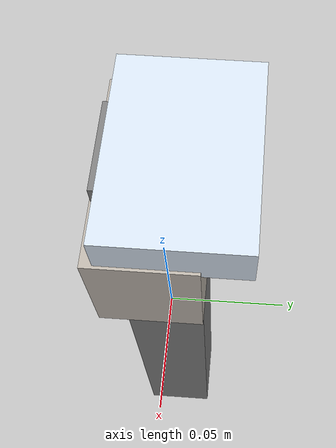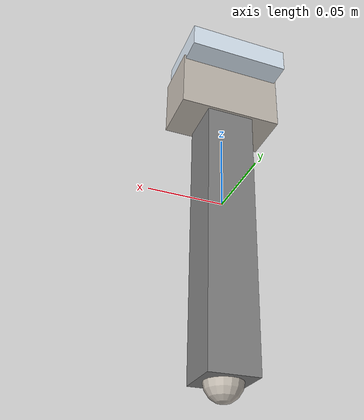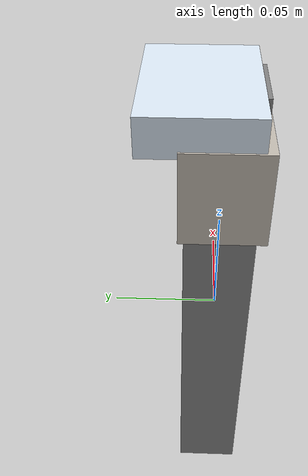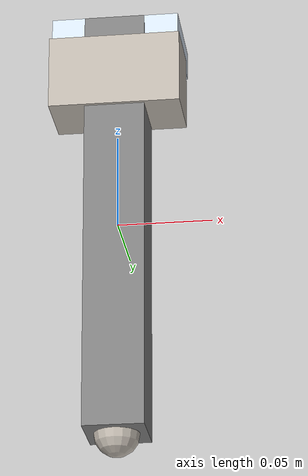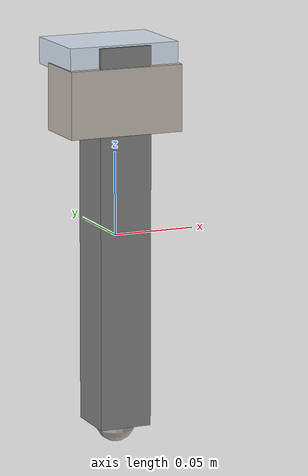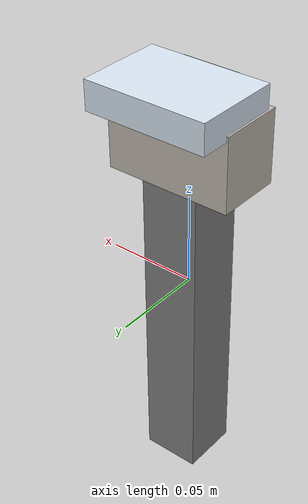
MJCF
<?xml version='1.0' encoding='utf8'?>
<mujoco model="vla82_vla82_042">
  <compiler angle="radian" />
  <asset>
    <texture name="source_texture" type="2d" file="source_texture.png" />
    <material name="source_material" texture="source_texture" rgba="1 1 1 1" />
  </asset>
  <default>
    <default class="visual"><geom contype="0" conaffinity="0" group="1" /></default>
    <default class="collision"><geom contype="1" conaffinity="1" group="0" density="300" friction="0.55 0.005 0.0002" solref="0.02 1" solimp="0.9 0.95 0.001" /></default>
    <default class="region"><geom contype="0" conaffinity="0" group="1" rgba="0 1 0 0" mass="0" /></default>
  </default>
  <worldbody><body><body name="object">
    <geom name="handle_visual" class="visual" type="capsule" fromto="0 0 -0.115 0 0 0.060" size="0.012" material="source_material" />
    <geom name="brush_head_visual" class="visual" type="box" pos="0 0 0.083" size="0.035 0.018 0.020" material="source_material" />
    <geom name="bristles_visual" class="visual" type="box" pos="0 0.010 0.108" size="0.034 0.024 0.008" rgba="0.85 0.90 0.95 1" />
    <geom name="collision" class="collision" type="box" size="0.016000 0.016000 0.115000" />
    <geom name="reg_bbox" class="region" type="box" pos="0 0 0" size="0.035000 0.024000 0.120000" />
  </body></body></worldbody>
  <actuator />
</mujoco>
